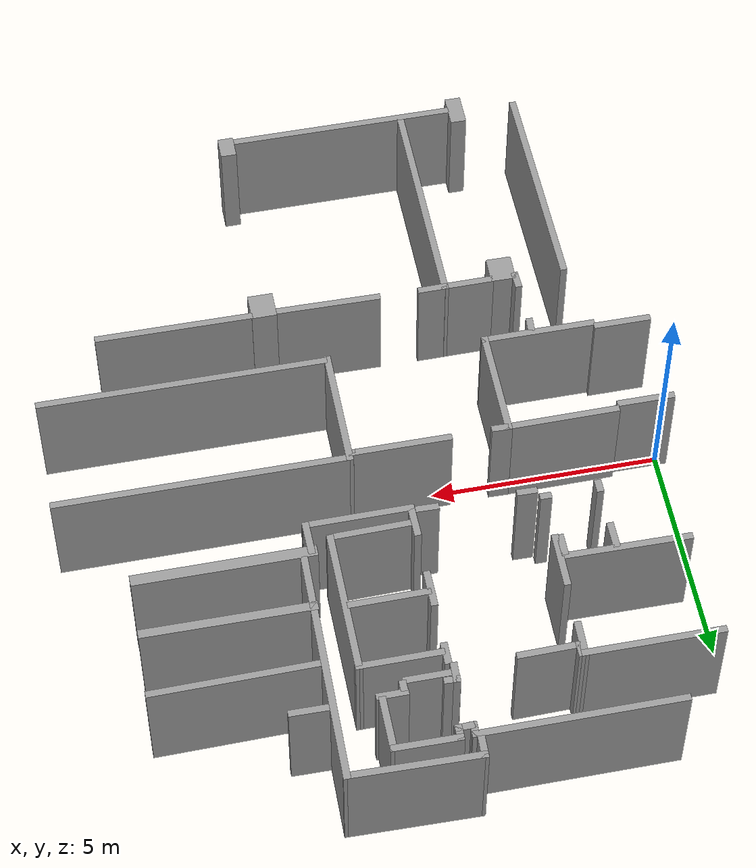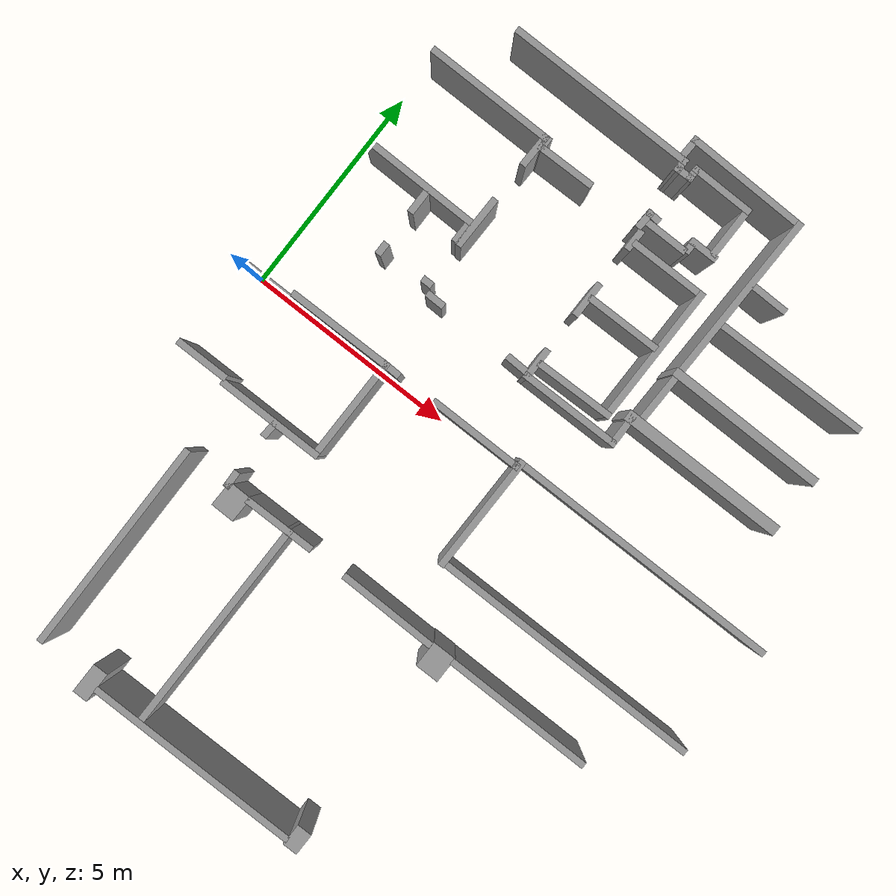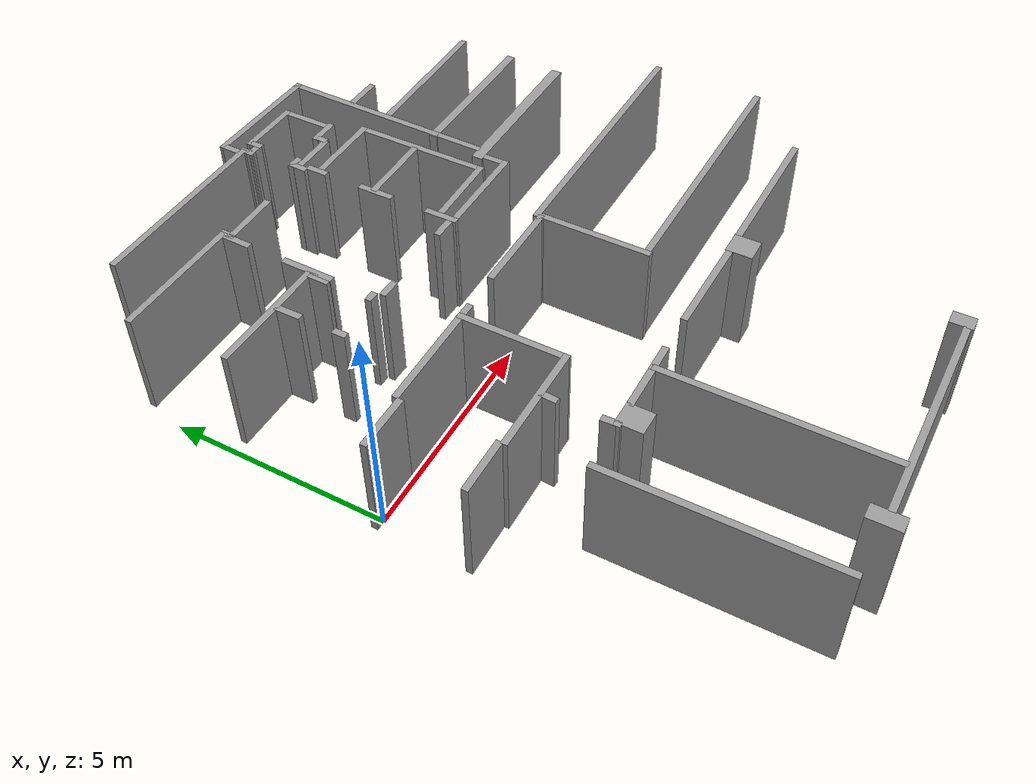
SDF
<sdf version="1.7">
 <model name="New_6_OG_normale_tueren">
  <pose>10.3487 -1.93317 0 0 -0 0</pose>
  <link name="Wall_152">
   <collision name="Wall_152_Collision">
    <geometry><box><size>0.438918 0.15 2.5</size></box></geometry>
    <pose>0 0 1.25 0 -0 0</pose>
   </collision>
   <visual name="Wall_152_Visual">
    <pose>0 0 1.25 0 -0 0</pose>
    <geometry><box><size>0.438918 0.15 2.5</size></box></geometry>
    <material>
     <script><uri>file://media/materials/scripts/gazebo.material</uri><name>Gazebo/Grey</name></script>
     <ambient>1 1 1 1</ambient>
    </material>
    <meta><layer>0</layer></meta>
   </visual>
   <pose>-6.9393 3.79409 0 0 -0 3.12331</pose>
  </link>
  <link name="Wall_164">
   <collision name="Wall_164_Collision">
    <geometry><box><size>3.00696 0.15 2.5</size></box></geometry>
    <pose>0 0 1.25 0 -0 0</pose>
   </collision>
   <visual name="Wall_164_Visual">
    <pose>0 0 1.25 0 -0 0</pose>
    <geometry><box><size>3.00696 0.15 2.5</size></box></geometry>
    <material>
     <script><uri>file://media/materials/scripts/gazebo.material</uri><name>Gazebo/Grey</name></script>
     <ambient>1 1 1 1</ambient>
    </material>
    <meta><layer>0</layer></meta>
   </visual>
   <pose>-8.64761 7.78528 0 0 -0 -0.002915</pose>
  </link>
  <link name="Wall_166">
   <collision name="Wall_166_Collision">
    <geometry><box><size>1.23115 0.15 2.5</size></box></geometry>
    <pose>0 0 1.25 0 -0 0</pose>
   </collision>
   <visual name="Wall_166_Visual">
    <pose>0 0 1.25 0 -0 0</pose>
    <geometry><box><size>1.23115 0.15 2.5</size></box></geometry>
    <material>
     <script><uri>file://media/materials/scripts/gazebo.material</uri><name>Gazebo/Grey</name></script>
     <ambient>1 1 1 1</ambient>
    </material>
    <meta><layer>0</layer></meta>
   </visual>
   <pose>-7.25141 5.55807 0 0 -0 1.56079</pose>
  </link>
  <link name="Wall_168">
   <collision name="Wall_168_Collision">
    <geometry><box><size>0.808489 0.15 2.5</size></box></geometry>
    <pose>0 0 1.25 0 -0 0</pose>
   </collision>
   <visual name="Wall_168_Visual">
    <pose>0 0 1.25 0 -0 0</pose>
    <geometry><box><size>0.808489 0.15 2.5</size></box></geometry>
    <material>
     <script><uri>file://media/materials/scripts/gazebo.material</uri><name>Gazebo/Grey</name></script>
     <ambient>1 1 1 1</ambient>
    </material>
    <meta><layer>0</layer></meta>
   </visual>
   <pose>-7.22578 7.45194 0 0 -0 1.5506</pose>
  </link>
  <link name="Wall_172">
   <collision name="Wall_172_Collision">
    <geometry><box><size>2.75013 0.15 2.5</size></box></geometry>
    <pose>0 0 1.25 0 -0 0</pose>
   </collision>
   <visual name="Wall_172_Visual">
    <pose>0 0 1.25 0 -0 0</pose>
    <geometry><box><size>2.75013 0.15 2.5</size></box></geometry>
    <material>
     <script><uri>file://media/materials/scripts/gazebo.material</uri><name>Gazebo/Grey</name></script>
     <ambient>1 1 1 1</ambient>
    </material>
    <meta><layer>0</layer></meta>
   </visual>
   <pose>-8.667 5.4928 0 0 -0 -0.01009</pose>
  </link>
  <link name="Wall_176">
   <collision name="Wall_176_Collision">
    <geometry><box><size>0.602751 0.15 2.5</size></box></geometry>
    <pose>0 0 1.25 0 -0 0</pose>
   </collision>
   <visual name="Wall_176_Visual">
    <pose>0 0 1.25 0 -0 0</pose>
    <geometry><box><size>0.602751 0.15 2.5</size></box></geometry>
    <material>
     <script><uri>file://media/materials/scripts/gazebo.material</uri><name>Gazebo/Grey</name></script>
     <ambient>1 1 1 1</ambient>
    </material>
    <meta><layer>0</layer></meta>
   </visual>
   <pose>-8.44182 5.17566 0 0 -0 -1.56317</pose>
  </link>
  <link name="Wall_178">
   <collision name="Wall_178_Collision">
    <geometry><box><size>0.303038 0.15 2.5</size></box></geometry>
    <pose>0 0 1.25 0 -0 0</pose>
   </collision>
   <visual name="Wall_178_Visual">
    <pose>0 0 1.25 0 -0 0</pose>
    <geometry><box><size>0.303038 0.15 2.5</size></box></geometry>
    <material>
     <script><uri>file://media/materials/scripts/gazebo.material</uri><name>Gazebo/Grey</name></script>
     <ambient>1 1 1 1</ambient>
    </material>
    <meta><layer>0</layer></meta>
   </visual>
   <pose>-8.43752 3.94317 0 0 -0 -1.5708</pose>
  </link>
  <link name="Wall_184">
   <collision name="Wall_184_Collision">
    <geometry><box><size>0.5 0.15 2.5</size></box></geometry>
    <pose>0 0 1.25 0 -0 0</pose>
   </collision>
   <visual name="Wall_184_Visual">
    <pose>0 0 1.25 0 -0 0</pose>
    <geometry><box><size>0.5 0.15 2.5</size></box></geometry>
    <material>
     <script><uri>file://media/materials/scripts/gazebo.material</uri><name>Gazebo/Grey</name></script>
     <ambient>1 1 1 1</ambient>
    </material>
    <meta><layer>0</layer></meta>
   </visual>
   <pose>-7.36175 5.2101 0 0 -0 -1.5708</pose>
  </link>
  <link name="Wall_188">
   <collision name="Wall_188_Collision">
    <geometry><box><size>0.25 0.15 2.5</size></box></geometry>
    <pose>0 0 1.25 0 -0 0</pose>
   </collision>
   <visual name="Wall_188_Visual">
    <pose>0 0 1.25 0 -0 0</pose>
    <geometry><box><size>0.25 0.15 2.5</size></box></geometry>
    <material>
     <script><uri>file://media/materials/scripts/gazebo.material</uri><name>Gazebo/Grey</name></script>
     <ambient>1 1 1 1</ambient>
    </material>
    <meta><layer>0</layer></meta>
   </visual>
   <pose>-7.29427 3.97715 0 0 -0 0</pose>
  </link>
  <link name="Wall_19">
   <collision name="Wall_19_Collision">
    <geometry><box><size>1.15349 0.15 2.5</size></box></geometry>
    <pose>0 0 1.25 0 -0 0</pose>
   </collision>
   <visual name="Wall_19_Visual">
    <pose>0 0 1.25 0 -0 0</pose>
    <geometry><box><size>1.15349 0.15 2.5</size></box></geometry>
    <material>
     <script><uri>file://media/materials/scripts/gazebo.material</uri><name>Gazebo/Grey</name></script>
     <ambient>1 1 1 1</ambient>
    </material>
    <meta><layer>0</layer></meta>
   </visual>
   <pose>-6.87291 -1.78985 0 0 -0 -3.13714</pose>
  </link>
  <link name="Wall_190">
   <collision name="Wall_190_Collision">
    <geometry><box><size>0.500143 0.15 2.5</size></box></geometry>
    <pose>0 0 1.25 0 -0 0</pose>
   </collision>
   <visual name="Wall_190_Visual">
    <pose>0 0 1.25 0 -0 0</pose>
    <geometry><box><size>0.500143 0.15 2.5</size></box></geometry>
    <material>
     <script><uri>file://media/materials/scripts/gazebo.material</uri><name>Gazebo/Grey</name></script>
     <ambient>1 1 1 1</ambient>
    </material>
    <meta><layer>0</layer></meta>
   </visual>
   <pose>-4.82652 3.79067 0 0 -0 -0.028564</pose>
  </link>
  <link name="Wall_192">
   <collision name="Wall_192_Collision">
    <geometry><box><size>0.773976 0.15 2.5</size></box></geometry>
    <pose>0 0 1.25 0 -0 0</pose>
   </collision>
   <visual name="Wall_192_Visual">
    <pose>0 0 1.25 0 -0 0</pose>
    <geometry><box><size>0.773976 0.15 2.5</size></box></geometry>
    <material>
     <script><uri>file://media/materials/scripts/gazebo.material</uri><name>Gazebo/Grey</name></script>
     <ambient>1 1 1 1</ambient>
    </material>
    <meta><layer>0</layer></meta>
   </visual>
   <pose>-4.50076 4.0341 0 0 -0 -1.5586</pose>
  </link>
  <link name="Wall_194">
   <collision name="Wall_194_Collision">
    <geometry><box><size>2.36359 0.15 2.5</size></box></geometry>
    <pose>0 0 1.25 0 -0 0</pose>
   </collision>
   <visual name="Wall_194_Visual">
    <pose>0 0 1.25 0 -0 0</pose>
    <geometry><box><size>2.36359 0.15 2.5</size></box></geometry>
    <material>
     <script><uri>file://media/materials/scripts/gazebo.material</uri><name>Gazebo/Grey</name></script>
     <ambient>1 1 1 1</ambient>
    </material>
    <meta><layer>0</layer></meta>
   </visual>
   <pose>-3.39021 3.72482 0 0 -0 -3.13933</pose>
  </link>
  <link name="Wall_196">
   <collision name="Wall_196_Collision">
    <geometry><box><size>0.834394 0.15 2.5</size></box></geometry>
    <pose>0 0 1.25 0 -0 0</pose>
   </collision>
   <visual name="Wall_196_Visual">
    <pose>0 0 1.25 0 -0 0</pose>
    <geometry><box><size>0.834394 0.15 2.5</size></box></geometry>
    <material>
     <script><uri>file://media/materials/scripts/gazebo.material</uri><name>Gazebo/Grey</name></script>
     <ambient>1 1 1 1</ambient>
    </material>
    <meta><layer>0</layer></meta>
   </visual>
   <pose>-4.49696 5.71467 0 0 -0 -1.5708</pose>
  </link>
  <link name="Wall_199">
   <collision name="Wall_199_Collision">
    <geometry><box><size>1.26849 0.15 2.5</size></box></geometry>
    <pose>0 0 1.25 0 -0 0</pose>
   </collision>
   <visual name="Wall_199_Visual">
    <pose>0 0 1.25 0 -0 0</pose>
    <geometry><box><size>1.26849 0.15 2.5</size></box></geometry>
    <material>
     <script><uri>file://media/materials/scripts/gazebo.material</uri><name>Gazebo/Grey</name></script>
     <ambient>1 1 1 1</ambient>
    </material>
    <meta><layer>0</layer></meta>
   </visual>
   <pose>-6.4931 7.58534 0 0 -0 -3.12799</pose>
  </link>
  <link name="Wall_205">
   <collision name="Wall_205_Collision">
    <geometry><box><size>4.43127 0.15 2.5</size></box></geometry>
    <pose>0 0 1.25 0 -0 0</pose>
   </collision>
   <visual name="Wall_205_Visual">
    <pose>0 0 1.25 0 -0 0</pose>
    <geometry><box><size>4.43127 0.15 2.5</size></box></geometry>
    <material>
     <script><uri>file://media/materials/scripts/gazebo.material</uri><name>Gazebo/Grey</name></script>
     <ambient>1 1 1 1</ambient>
    </material>
    <meta><layer>0</layer></meta>
   </visual>
   <pose>-6.8277 9.16325 0 0 -0 3.13982</pose>
  </link>
  <link name="Wall_207">
   <collision name="Wall_207_Collision">
    <geometry><box><size>0.355881 0.15 2.5</size></box></geometry>
    <pose>0 0 1.25 0 -0 0</pose>
   </collision>
   <visual name="Wall_207_Visual">
    <pose>0 0 1.25 0 -0 0</pose>
    <geometry><box><size>0.355881 0.15 2.5</size></box></geometry>
    <material>
     <script><uri>file://media/materials/scripts/gazebo.material</uri><name>Gazebo/Grey</name></script>
     <ambient>1 1 1 1</ambient>
    </material>
    <meta><layer>0</layer></meta>
   </visual>
   <pose>-4.68707 9.05679 0 0 -0 -1.5708</pose>
  </link>
  <link name="Wall_208">
   <collision name="Wall_208_Collision">
    <geometry><box><size>0.455029 0.15 2.5</size></box></geometry>
    <pose>0 0 1.25 0 -0 0</pose>
   </collision>
   <visual name="Wall_208_Visual">
    <pose>0 0 1.25 0 -0 0</pose>
    <geometry><box><size>0.455029 0.15 2.5</size></box></geometry>
    <material>
     <script><uri>file://media/materials/scripts/gazebo.material</uri><name>Gazebo/Grey</name></script>
     <ambient>1 1 1 1</ambient>
    </material>
    <meta><layer>0</layer></meta>
   </visual>
   <pose>-4.53498 8.95793 0 0 -0 0.024995</pose>
  </link>
  <link name="Wall_209">
   <collision name="Wall_209_Collision">
    <geometry><box><size>0.355318 0.15 2.5</size></box></geometry>
    <pose>0 0 1.25 0 -0 0</pose>
   </collision>
   <visual name="Wall_209_Visual">
    <pose>0 0 1.25 0 -0 0</pose>
    <geometry><box><size>0.355318 0.15 2.5</size></box></geometry>
    <material>
     <script><uri>file://media/materials/scripts/gazebo.material</uri><name>Gazebo/Grey</name></script>
     <ambient>1 1 1 1</ambient>
    </material>
    <meta><layer>0</layer></meta>
   </visual>
   <pose>-4.38289 9.06439 0 0 -0 1.5708</pose>
  </link>
  <link name="Wall_210">
   <collision name="Wall_210_Collision">
    <geometry><box><size>1.48085 0.15 2.5</size></box></geometry>
    <pose>0 0 1.25 0 -0 0</pose>
   </collision>
   <visual name="Wall_210_Visual">
    <pose>0 0 1.25 0 -0 0</pose>
    <geometry><box><size>1.48085 0.15 2.5</size></box></geometry>
    <material>
     <script><uri>file://media/materials/scripts/gazebo.material</uri><name>Gazebo/Grey</name></script>
     <ambient>1 1 1 1</ambient>
    </material>
    <meta><layer>0</layer></meta>
   </visual>
   <pose>-3.71751 9.16705 0 0 -0 -0.011428</pose>
  </link>
  <link name="Wall_212">
   <collision name="Wall_212_Collision">
    <geometry><box><size>1.25 0.15 2.5</size></box></geometry>
    <pose>0 0 1.25 0 -0 0</pose>
   </collision>
   <visual name="Wall_212_Visual">
    <pose>0 0 1.25 0 -0 0</pose>
    <geometry><box><size>1.25 0.15 2.5</size></box></geometry>
    <material>
     <script><uri>file://media/materials/scripts/gazebo.material</uri><name>Gazebo/Grey</name></script>
     <ambient>1 1 1 1</ambient>
    </material>
    <meta><layer>0</layer></meta>
   </visual>
   <pose>-3.04452 8.60945 0 0 -0 -1.5708</pose>
  </link>
  <link name="Wall_214">
   <collision name="Wall_214_Collision">
    <geometry><box><size>0.459849 0.15 2.5</size></box></geometry>
    <pose>0 0 1.25 0 -0 0</pose>
   </collision>
   <visual name="Wall_214_Visual">
    <pose>0 0 1.25 0 -0 0</pose>
    <geometry><box><size>0.459849 0.15 2.5</size></box></geometry>
    <material>
     <script><uri>file://media/materials/scripts/gazebo.material</uri><name>Gazebo/Grey</name></script>
     <ambient>1 1 1 1</ambient>
    </material>
    <meta><layer>0</layer></meta>
   </visual>
   <pose>-4.58191 7.72493 0 0 -0 -1.61149</pose>
  </link>
  <link name="Wall_216">
   <collision name="Wall_216_Collision">
    <geometry><box><size>0.340261 0.15 2.5</size></box></geometry>
    <pose>0 0 1.25 0 -0 0</pose>
   </collision>
   <visual name="Wall_216_Visual">
    <pose>0 0 1.25 0 -0 0</pose>
    <geometry><box><size>0.340261 0.15 2.5</size></box></geometry>
    <material>
     <script><uri>file://media/materials/scripts/gazebo.material</uri><name>Gazebo/Grey</name></script>
     <ambient>1 1 1 1</ambient>
    </material>
    <meta><layer>0</layer></meta>
   </visual>
   <pose>-4.48555 7.87593 0 0 -0 -0.039979</pose>
  </link>
  <link name="Wall_218">
   <collision name="Wall_218_Collision">
    <geometry><box><size>1 0.15 2.5</size></box></geometry>
    <pose>0 0 1.25 0 -0 0</pose>
   </collision>
   <visual name="Wall_218_Visual">
    <pose>0 0 1.25 0 -0 0</pose>
    <geometry><box><size>1 0.15 2.5</size></box></geometry>
    <material>
     <script><uri>file://media/materials/scripts/gazebo.material</uri><name>Gazebo/Grey</name></script>
     <ambient>1 1 1 1</ambient>
    </material>
    <meta><layer>0</layer></meta>
   </visual>
   <pose>-4.01704 7.71224 0 0 -0 3.14159</pose>
  </link>
  <link name="Wall_220">
   <collision name="Wall_220_Collision">
    <geometry><box><size>0.667097 0.15 2.5</size></box></geometry>
    <pose>0 0 1.25 0 -0 0</pose>
   </collision>
   <visual name="Wall_220_Visual">
    <pose>0 0 1.25 0 -0 0</pose>
    <geometry><box><size>0.667097 0.15 2.5</size></box></geometry>
    <material>
     <script><uri>file://media/materials/scripts/gazebo.material</uri><name>Gazebo/Grey</name></script>
     <ambient>1 1 1 1</ambient>
    </material>
    <meta><layer>0</layer></meta>
   </visual>
   <pose>-3.25744 7.97317 0 0 -0 0</pose>
  </link>
  <link name="Wall_223">
   <collision name="Wall_223_Collision">
    <geometry><box><size>0.25 0.15 2.5</size></box></geometry>
    <pose>0 0 1.25 0 -0 0</pose>
   </collision>
   <visual name="Wall_223_Visual">
    <pose>0 0 1.25 0 -0 0</pose>
    <geometry><box><size>0.25 0.15 2.5</size></box></geometry>
    <material>
     <script><uri>file://media/materials/scripts/gazebo.material</uri><name>Gazebo/Grey</name></script>
     <ambient>1 1 1 1</ambient>
    </material>
    <meta><layer>0</layer></meta>
   </visual>
   <pose>-3.50839 7.82545 0 0 -0 1.5708</pose>
  </link>
  <link name="Wall_226">
   <collision name="Wall_226_Collision">
    <geometry><box><size>0.501988 0.15 2.5</size></box></geometry>
    <pose>0 0 1.25 0 -0 0</pose>
   </collision>
   <visual name="Wall_226_Visual">
    <pose>0 0 1.25 0 -0 0</pose>
    <geometry><box><size>0.501988 0.15 2.5</size></box></geometry>
    <material>
     <script><uri>file://media/materials/scripts/gazebo.material</uri><name>Gazebo/Grey</name></script>
     <ambient>1 1 1 1</ambient>
    </material>
    <meta><layer>0</layer></meta>
   </visual>
   <pose>-4.4927 7.26329 0 0 -0 1.5708</pose>
  </link>
  <link name="Wall_228">
   <collision name="Wall_228_Collision">
    <geometry><box><size>0.784598 0.15 2.5</size></box></geometry>
    <pose>0 0 1.25 0 -0 0</pose>
   </collision>
   <visual name="Wall_228_Visual">
    <pose>0 0 1.25 0 -0 0</pose>
    <geometry><box><size>0.784598 0.15 2.5</size></box></geometry>
    <material>
     <script><uri>file://media/materials/scripts/gazebo.material</uri><name>Gazebo/Grey</name></script>
     <ambient>1 1 1 1</ambient>
    </material>
    <meta><layer>0</layer></meta>
   </visual>
   <pose>-2.28634 4.04961 0 0 -0 -1.56172</pose>
  </link>
  <link name="Wall_23">
   <collision name="Wall_23_Collision">
    <geometry><box><size>4.96531 0.15 2.5</size></box></geometry>
    <pose>0 0 1.25 0 -0 0</pose>
   </collision>
   <visual name="Wall_23_Visual">
    <pose>0 0 1.25 0 -0 0</pose>
    <geometry><box><size>4.96531 0.15 2.5</size></box></geometry>
    <material>
     <script><uri>file://media/materials/scripts/gazebo.material</uri><name>Gazebo/Grey</name></script>
     <ambient>1 1 1 1</ambient>
    </material>
    <meta><layer>0</layer></meta>
   </visual>
   <pose>-9.00712 -4.21302 0 0 -0 1.57869</pose>
  </link>
  <link name="Wall_230">
   <collision name="Wall_230_Collision">
    <geometry><box><size>3.875 0.25 2.5</size></box></geometry>
    <pose>0 0 1.25 0 -0 0</pose>
   </collision>
   <visual name="Wall_230_Visual">
    <pose>0 0 1.25 0 -0 0</pose>
    <geometry><box><size>3.875 0.25 2.5</size></box></geometry>
    <material>
     <script><uri>file://media/materials/scripts/gazebo.material</uri><name>Gazebo/Grey</name></script>
     <ambient>1 1 1 1</ambient>
    </material>
    <meta><layer>0</layer></meta>
   </visual>
   <pose>-0.476715 4.37189 0 0 -0 0</pose>
  </link>
  <link name="Wall_232">
   <collision name="Wall_232_Collision">
    <geometry><box><size>3.68006 0.2 2.5</size></box></geometry>
    <pose>0 0 1.25 0 -0 0</pose>
   </collision>
   <visual name="Wall_232_Visual">
    <pose>0 0 1.25 0 -0 0</pose>
    <geometry><box><size>3.68006 0.2 2.5</size></box></geometry>
    <material>
     <script><uri>file://media/materials/scripts/gazebo.material</uri><name>Gazebo/Grey</name></script>
     <ambient>1 1 1 1</ambient>
    </material>
    <meta><layer>0</layer></meta>
   </visual>
   <pose>-0.35374 5.65717 0 0 -0 -0.005747</pose>
  </link>
  <link name="Wall_245">
   <collision name="Wall_245_Collision">
    <geometry><box><size>4.06045 0.15 2.5</size></box></geometry>
    <pose>0 0 1.25 0 -0 0</pose>
   </collision>
   <visual name="Wall_245_Visual">
    <pose>0 0 1.25 0 -0 0</pose>
    <geometry><box><size>4.06045 0.15 2.5</size></box></geometry>
    <material>
     <script><uri>file://media/materials/scripts/gazebo.material</uri><name>Gazebo/Grey</name></script>
     <ambient>1 1 1 1</ambient>
    </material>
    <meta><layer>0</layer></meta>
   </visual>
   <pose>-2.06279 7.62215 0 0 -0 -1.58663</pose>
  </link>
  <link name="Wall_247">
   <collision name="Wall_247_Collision">
    <geometry><box><size>2.88611 0.15 2.5</size></box></geometry>
    <pose>0 0 1.25 0 -0 0</pose>
   </collision>
   <visual name="Wall_247_Visual">
    <pose>0 0 1.25 0 -0 0</pose>
    <geometry><box><size>2.88611 0.15 2.5</size></box></geometry>
    <material>
     <script><uri>file://media/materials/scripts/gazebo.material</uri><name>Gazebo/Grey</name></script>
     <ambient>1 1 1 1</ambient>
    </material>
    <meta><layer>0</layer></meta>
   </visual>
   <pose>-3.39956 9.6073 0 0 -0 -0.022055</pose>
  </link>
  <link name="Wall_249">
   <collision name="Wall_249_Collision">
    <geometry><box><size>0.492079 0.15 2.5</size></box></geometry>
    <pose>0 0 1.25 0 -0 0</pose>
   </collision>
   <visual name="Wall_249_Visual">
    <pose>0 0 1.25 0 -0 0</pose>
    <geometry><box><size>0.492079 0.15 2.5</size></box></geometry>
    <material>
     <script><uri>file://media/materials/scripts/gazebo.material</uri><name>Gazebo/Grey</name></script>
     <ambient>1 1 1 1</ambient>
    </material>
    <meta><layer>0</layer></meta>
   </visual>
   <pose>-4.77232 9.4665 0 0 -0 -1.6002</pose>
  </link>
  <link name="Wall_251">
   <collision name="Wall_251_Collision">
    <geometry><box><size>1.739 0.15 2.5</size></box></geometry>
    <pose>0 0 1.25 0 -0 0</pose>
   </collision>
   <visual name="Wall_251_Visual">
    <pose>0 0 1.25 0 -0 0</pose>
    <geometry><box><size>1.739 0.15 2.5</size></box></geometry>
    <material>
     <script><uri>file://media/materials/scripts/gazebo.material</uri><name>Gazebo/Grey</name></script>
     <ambient>1 1 1 1</ambient>
    </material>
    <meta><layer>0</layer></meta>
   </visual>
   <pose>-3.63087 5.78069 0 0 -0 0.006329</pose>
  </link>
  <link name="Wall_254">
   <collision name="Wall_254_Collision">
    <geometry><box><size>1.83981 0.15 2.5</size></box></geometry>
    <pose>0 0 1.25 0 -0 0</pose>
   </collision>
   <visual name="Wall_254_Visual">
    <pose>0 0 1.25 0 -0 0</pose>
    <geometry><box><size>1.83981 0.15 2.5</size></box></geometry>
    <material>
     <script><uri>file://media/materials/scripts/gazebo.material</uri><name>Gazebo/Grey</name></script>
     <ambient>1 1 1 1</ambient>
    </material>
    <meta><layer>0</layer></meta>
   </visual>
   <pose>-3.57053 4.10121 0 0 -0 0.017855</pose>
  </link>
  <link name="Wall_255">
   <collision name="Wall_255_Collision">
    <geometry><box><size>3.25 0.15 2.5</size></box></geometry>
    <pose>0 0 1.25 0 -0 0</pose>
   </collision>
   <visual name="Wall_255_Visual">
    <pose>0 0 1.25 0 -0 0</pose>
    <geometry><box><size>3.25 0.15 2.5</size></box></geometry>
    <material>
     <script><uri>file://media/materials/scripts/gazebo.material</uri><name>Gazebo/Grey</name></script>
     <ambient>1 1 1 1</ambient>
    </material>
    <meta><layer>0</layer></meta>
   </visual>
   <pose>-2.72576 5.66629 0 0 -0 1.5708</pose>
  </link>
  <link name="Wall_256">
   <collision name="Wall_256_Collision">
    <geometry><box><size>1.83048 0.15 2.5</size></box></geometry>
    <pose>0 0 1.25 0 -0 0</pose>
   </collision>
   <visual name="Wall_256_Visual">
    <pose>0 0 1.25 0 -0 0</pose>
    <geometry><box><size>1.83048 0.15 2.5</size></box></geometry>
    <material>
     <script><uri>file://media/materials/scripts/gazebo.material</uri><name>Gazebo/Grey</name></script>
     <ambient>1 1 1 1</ambient>
    </material>
    <meta><layer>0</layer></meta>
   </visual>
   <pose>-3.5655 7.21504 0 0 -0 -3.1401</pose>
  </link>
  <link name="Wall_258">
   <collision name="Wall_258_Collision">
    <geometry><box><size>1.26859 0.15 2.5</size></box></geometry>
    <pose>0 0 1.25 0 -0 0</pose>
   </collision>
   <visual name="Wall_258_Visual">
    <pose>0 0 1.25 0 -0 0</pose>
    <geometry><box><size>1.26859 0.15 2.5</size></box></geometry>
    <material>
     <script><uri>file://media/materials/scripts/gazebo.material</uri><name>Gazebo/Grey</name></script>
     <ambient>1 1 1 1</ambient>
    </material>
    <meta><layer>0</layer></meta>
   </visual>
   <pose>-2.10302 5.10795 0 0 -0 -1.58739</pose>
  </link>
  <link name="Wall_264">
   <collision name="Wall_264_Collision">
    <geometry><box><size>3.61982 0.15 2.5</size></box></geometry>
    <pose>0 0 1.25 0 -0 0</pose>
   </collision>
   <visual name="Wall_264_Visual">
    <pose>0 0 1.25 0 -0 0</pose>
    <geometry><box><size>3.61982 0.15 2.5</size></box></geometry>
    <material>
     <script><uri>file://media/materials/scripts/gazebo.material</uri><name>Gazebo/Grey</name></script>
     <ambient>1 1 1 1</ambient>
    </material>
    <meta><layer>0</layer></meta>
   </visual>
   <pose>-0.266876 7.02271 0 0 -0 0.011594</pose>
  </link>
  <link name="Wall_27">
   <collision name="Wall_27_Collision">
    <geometry><box><size>5 0.15 2.5</size></box></geometry>
    <pose>0 0 1.25 0 -0 0</pose>
   </collision>
   <visual name="Wall_27_Visual">
    <pose>0 0 1.25 0 -0 0</pose>
    <geometry><box><size>5 0.15 2.5</size></box></geometry>
    <material>
     <script><uri>file://media/materials/scripts/gazebo.material</uri><name>Gazebo/Grey</name></script>
     <ambient>1 1 1 1</ambient>
    </material>
    <meta><layer>0</layer></meta>
   </visual>
   <pose>-4.99607 -6.74448 0 0 -0 0</pose>
  </link>
  <link name="Wall_271">
   <collision name="Wall_271_Collision">
    <geometry><box><size>0.864103 0.15 2.5</size></box></geometry>
    <pose>0 0 1.25 0 -0 0</pose>
   </collision>
   <visual name="Wall_271_Visual">
    <pose>0 0 1.25 0 -0 0</pose>
    <geometry><box><size>0.864103 0.15 2.5</size></box></geometry>
    <material>
     <script><uri>file://media/materials/scripts/gazebo.material</uri><name>Gazebo/Grey</name></script>
     <ambient>1 1 1 1</ambient>
    </material>
    <meta><layer>0</layer></meta>
   </visual>
   <pose>-1.58161 8.01575 0 0 -0 3.12751</pose>
  </link>
  <link name="Wall_288">
   <collision name="Wall_288_Collision">
    <geometry><box><size>1.25 0.15 2.5</size></box></geometry>
    <pose>0 0 1.25 0 -0 0</pose>
   </collision>
   <visual name="Wall_288_Visual">
    <pose>0 0 1.25 0 -0 0</pose>
    <geometry><box><size>1.25 0.15 2.5</size></box></geometry>
    <material>
     <script><uri>file://media/materials/scripts/gazebo.material</uri><name>Gazebo/Grey</name></script>
     <ambient>1 1 1 1</ambient>
    </material>
    <meta><layer>0</layer></meta>
   </visual>
   <pose>-9.93743 -0.110096 0 0 -0 0</pose>
  </link>
  <link name="Wall_290">
   <collision name="Wall_290_Collision">
    <geometry><box><size>1.25 0.15 2.5</size></box></geometry>
    <pose>0 0 1.25 0 -0 0</pose>
   </collision>
   <visual name="Wall_290_Visual">
    <pose>0 0 1.25 0 -0 0</pose>
    <geometry><box><size>1.25 0.15 2.5</size></box></geometry>
    <material>
     <script><uri>file://media/materials/scripts/gazebo.material</uri><name>Gazebo/Grey</name></script>
     <ambient>1 1 1 1</ambient>
    </material>
    <meta><layer>0</layer></meta>
   </visual>
   <pose>-9.93743 1.9899 0 0 -0 0</pose>
  </link>
  <link name="Wall_292">
   <collision name="Wall_292_Collision">
    <geometry><box><size>2.48683 0.15 2.5</size></box></geometry>
    <pose>0 0 1.25 0 -0 0</pose>
   </collision>
   <visual name="Wall_292_Visual">
    <pose>0 0 1.25 0 -0 0</pose>
    <geometry><box><size>2.48683 0.15 2.5</size></box></geometry>
    <material>
     <script><uri>file://media/materials/scripts/gazebo.material</uri><name>Gazebo/Grey</name></script>
     <ambient>1 1 1 1</ambient>
    </material>
    <meta><layer>0</layer></meta>
   </visual>
   <pose>-8.08823 2.11217 0 0 -0 -3.13593</pose>
  </link>
  <link name="Wall_295">
   <collision name="Wall_295_Collision">
    <geometry><box><size>2.5 0.15 2.5</size></box></geometry>
    <pose>0 0 1.25 0 -0 0</pose>
   </collision>
   <visual name="Wall_295_Visual">
    <pose>0 0 1.25 0 -0 0</pose>
    <geometry><box><size>2.5 0.15 2.5</size></box></geometry>
    <material>
     <script><uri>file://media/materials/scripts/gazebo.material</uri><name>Gazebo/Grey</name></script>
     <ambient>1 1 1 1</ambient>
    </material>
    <meta><layer>0</layer></meta>
   </visual>
   <pose>-8.09762 -0.207504 0 0 -0 3.14159</pose>
  </link>
  <link name="Wall_297">
   <collision name="Wall_297_Collision">
    <geometry><box><size>2.47629 0.15 2.5</size></box></geometry>
    <pose>0 0 1.25 0 -0 0</pose>
   </collision>
   <visual name="Wall_297_Visual">
    <pose>0 0 1.25 0 -0 0</pose>
    <geometry><box><size>2.47629 0.15 2.5</size></box></geometry>
    <material>
     <script><uri>file://media/materials/scripts/gazebo.material</uri><name>Gazebo/Grey</name></script>
     <ambient>1 1 1 1</ambient>
    </material>
    <meta><layer>0</layer></meta>
   </visual>
   <pose>-6.92123 0.955639 0 0 -0 -1.57199</pose>
  </link>
  <link name="Wall_299">
   <collision name="Wall_299_Collision">
    <geometry><box><size>0.4407 0.15 2.5</size></box></geometry>
    <pose>0 0 1.25 0 -0 0</pose>
   </collision>
   <visual name="Wall_299_Visual">
    <pose>0 0 1.25 0 -0 0</pose>
    <geometry><box><size>0.4407 0.15 2.5</size></box></geometry>
    <material>
     <script><uri>file://media/materials/scripts/gazebo.material</uri><name>Gazebo/Grey</name></script>
     <ambient>1 1 1 1</ambient>
    </material>
    <meta><layer>0</layer></meta>
   </visual>
   <pose>-6.77455 2.11824 0 0 -0 3.11513</pose>
  </link>
  <link name="Wall_301">
   <collision name="Wall_301_Collision">
    <geometry><box><size>2.22433 0.15 2.5</size></box></geometry>
    <pose>0 0 1.25 0 -0 0</pose>
   </collision>
   <visual name="Wall_301_Visual">
    <pose>0 0 1.25 0 -0 0</pose>
    <geometry><box><size>2.22433 0.15 2.5</size></box></geometry>
    <material>
     <script><uri>file://media/materials/scripts/gazebo.material</uri><name>Gazebo/Grey</name></script>
     <ambient>1 1 1 1</ambient>
    </material>
    <meta><layer>0</layer></meta>
   </visual>
   <pose>-4.59029 2.1422 0 0 -0 -0.00188</pose>
  </link>
  <link name="Wall_302">
   <collision name="Wall_302_Collision">
    <geometry><box><size>0.15 0.15 2.5</size></box></geometry>
    <pose>0 0 1.25 0 -0 0</pose>
   </collision>
   <visual name="Wall_302_Visual">
    <pose>0 0 1.25 0 -0 0</pose>
    <geometry><box><size>0.15 0.15 2.5</size></box></geometry>
    <material>
     <script><uri>file://media/materials/scripts/gazebo.material</uri><name>Gazebo/Grey</name></script>
     <ambient>1 1 1 1</ambient>
    </material>
    <meta><layer>0</layer></meta>
   </visual>
   <pose>-3.55313 2.14025 0 0 -0 0</pose>
  </link>
  <link name="Wall_307">
   <collision name="Wall_307_Collision">
    <geometry><box><size>2.74052 0.15 2.5</size></box></geometry>
    <pose>0 0 1.25 0 -0 0</pose>
   </collision>
   <visual name="Wall_307_Visual">
    <pose>0 0 1.25 0 -0 0</pose>
    <geometry><box><size>2.74052 0.15 2.5</size></box></geometry>
    <material>
     <script><uri>file://media/materials/scripts/gazebo.material</uri><name>Gazebo/Grey</name></script>
     <ambient>1 1 1 1</ambient>
    </material>
    <meta><layer>0</layer></meta>
   </visual>
   <pose>-3.49477 0.949115 0 0 -0 1.56743</pose>
  </link>
  <link name="Wall_308">
   <collision name="Wall_308_Collision">
    <geometry><box><size>6.38515 0.15 2.5</size></box></geometry>
    <pose>0 0 1.25 0 -0 0</pose>
   </collision>
   <visual name="Wall_308_Visual">
    <pose>0 0 1.25 0 -0 0</pose>
    <geometry><box><size>6.38515 0.15 2.5</size></box></geometry>
    <material>
     <script><uri>file://media/materials/scripts/gazebo.material</uri><name>Gazebo/Grey</name></script>
     <ambient>1 1 1 1</ambient>
    </material>
    <meta><layer>0</layer></meta>
   </visual>
   <pose>-0.372844 2.2432 0 0 -0 -0.000366</pose>
  </link>
  <link name="Wall_314">
   <collision name="Wall_314_Collision">
    <geometry><box><size>6.27962 0.15 2.5</size></box></geometry>
    <pose>0 0 1.25 0 -0 0</pose>
   </collision>
   <visual name="Wall_314_Visual">
    <pose>0 0 1.25 0 -0 0</pose>
    <geometry><box><size>6.27962 0.15 2.5</size></box></geometry>
    <material>
     <script><uri>file://media/materials/scripts/gazebo.material</uri><name>Gazebo/Grey</name></script>
     <ambient>1 1 1 1</ambient>
    </material>
    <meta><layer>0</layer></meta>
   </visual>
   <pose>-0.344657 -0.328939 0 0 -0 3.13971</pose>
  </link>
  <link name="Wall_341">
   <collision name="Wall_341_Collision">
    <geometry><box><size>0.38638 0.15 2.5</size></box></geometry>
    <pose>0 0 1.25 0 -0 0</pose>
   </collision>
   <visual name="Wall_341_Visual">
    <pose>0 0 1.25 0 -0 0</pose>
    <geometry><box><size>0.38638 0.15 2.5</size></box></geometry>
    <material>
     <script><uri>file://media/materials/scripts/gazebo.material</uri><name>Gazebo/Grey</name></script>
     <ambient>1 1 1 1</ambient>
    </material>
    <meta><layer>0</layer></meta>
   </visual>
   <pose>-7.96817 -0.388215 0 0 -0 -1.64384</pose>
  </link>
  <link name="Wall_343">
   <collision name="Wall_343_Collision">
    <geometry><box><size>0.403261 0.15 2.5</size></box></geometry>
    <pose>0 0 1.25 0 -0 0</pose>
   </collision>
   <visual name="Wall_343_Visual">
    <pose>0 0 1.25 0 -0 0</pose>
    <geometry><box><size>0.403261 0.15 2.5</size></box></geometry>
    <material>
     <script><uri>file://media/materials/scripts/gazebo.material</uri><name>Gazebo/Grey</name></script>
     <ambient>1 1 1 1</ambient>
    </material>
    <meta><layer>0</layer></meta>
   </visual>
   <pose>-7.94804 -1.66184 0 0 -0 -1.52537</pose>
  </link>
  <link name="Wall_345">
   <collision name="Wall_345_Collision">
    <geometry><box><size>0.15 0.15 2.5</size></box></geometry>
    <pose>0 0 1.25 0 -0 0</pose>
   </collision>
   <visual name="Wall_345_Visual">
    <pose>0 0 1.25 0 -0 0</pose>
    <geometry><box><size>0.15 0.15 2.5</size></box></geometry>
    <material>
     <script><uri>file://media/materials/scripts/gazebo.material</uri><name>Gazebo/Grey</name></script>
     <ambient>1 1 1 1</ambient>
    </material>
    <meta><layer>0</layer></meta>
   </visual>
   <pose>-7.94229 -1.79409 0 0 -0 0</pose>
  </link>
  <link name="Wall_347">
   <collision name="Wall_347_Collision">
    <geometry><box><size>0.6 0.55 2.5</size></box></geometry>
    <pose>0 0 1.25 0 -0 0</pose>
   </collision>
   <visual name="Wall_347_Visual">
    <pose>0 0 1.25 0 -0 0</pose>
    <geometry><box><size>0.6 0.55 2.5</size></box></geometry>
    <material>
     <script><uri>file://media/materials/scripts/gazebo.material</uri><name>Gazebo/Grey</name></script>
     <ambient>1 1 1 1</ambient>
    </material>
    <meta><layer>0</layer></meta>
   </visual>
   <pose>-7.67482 -2.01708 0 0 -0 -1.58395</pose>
  </link>
  <link name="Wall_351">
   <collision name="Wall_351_Collision">
    <geometry><box><size>0.6 0.55 2.5</size></box></geometry>
    <pose>0 0 1.25 0 -0 0</pose>
   </collision>
   <visual name="Wall_351_Visual">
    <pose>0 0 1.25 0 -0 0</pose>
    <geometry><box><size>0.6 0.55 2.5</size></box></geometry>
    <material>
     <script><uri>file://media/materials/scripts/gazebo.material</uri><name>Gazebo/Grey</name></script>
     <ambient>1 1 1 1</ambient>
    </material>
    <meta><layer>0</layer></meta>
   </visual>
   <pose>-2.36824 -2.02258 0 0 -0 -1.5708</pose>
  </link>
  <link name="Wall_381">
   <collision name="Wall_381_Collision">
    <geometry><box><size>0.7 0.35 2.5</size></box></geometry>
    <pose>0 0 1.25 0 -0 0</pose>
   </collision>
   <visual name="Wall_381_Visual">
    <pose>0 0 1.25 0 -0 0</pose>
    <geometry><box><size>0.7 0.35 2.5</size></box></geometry>
    <material>
     <script><uri>file://media/materials/scripts/gazebo.material</uri><name>Gazebo/Grey</name></script>
     <ambient>1 1 1 1</ambient>
    </material>
    <meta><layer>0</layer></meta>
   </visual>
   <pose>-7.65551 -6.70957 0 0 -0 -1.5708</pose>
  </link>
  <link name="Wall_383">
   <collision name="Wall_383_Collision">
    <geometry><box><size>0.5 0.35 2.5</size></box></geometry>
    <pose>0 0 1.25 0 -0 0</pose>
   </collision>
   <visual name="Wall_383_Visual">
    <pose>0 0 1.25 0 -0 0</pose>
    <geometry><box><size>0.5 0.35 2.5</size></box></geometry>
    <material>
     <script><uri>file://media/materials/scripts/gazebo.material</uri><name>Gazebo/Grey</name></script>
     <ambient>1 1 1 1</ambient>
    </material>
    <meta><layer>0</layer></meta>
   </visual>
   <pose>-2.3552 -6.61956 0 0 -0 -1.5708</pose>
  </link>
  <link name="Wall_406">
   <collision name="Wall_406_Collision">
    <geometry><box><size>0.35119 0.15 2.5</size></box></geometry>
    <pose>0 0 1.25 0 -0 0</pose>
   </collision>
   <visual name="Wall_406_Visual">
    <pose>0 0 1.25 0 -0 0</pose>
    <geometry><box><size>0.35119 0.15 2.5</size></box></geometry>
    <material>
     <script><uri>file://media/materials/scripts/gazebo.material</uri><name>Gazebo/Grey</name></script>
     <ambient>1 1 1 1</ambient>
    </material>
    <meta><layer>0</layer></meta>
   </visual>
   <pose>-7.15432 7.67948 0 0 -0 -1.55506</pose>
  </link>
  <link name="Wall_65">
   <collision name="Wall_65_Collision">
    <geometry><box><size>5 0.15 2.5</size></box></geometry>
    <pose>0 0 1.25 0 -0 0</pose>
   </collision>
   <visual name="Wall_65_Visual">
    <pose>0 0 1.25 0 -0 0</pose>
    <geometry><box><size>5 0.15 2.5</size></box></geometry>
    <material>
     <script><uri>file://media/materials/scripts/gazebo.material</uri><name>Gazebo/Grey</name></script>
     <ambient>1 1 1 1</ambient>
    </material>
    <meta><layer>0</layer></meta>
   </visual>
   <pose>-6.37117 -4.21262 0 0 -0 -1.5708</pose>
  </link>
  <link name="Wall_67">
   <collision name="Wall_67_Collision">
    <geometry><box><size>0.668749 0.15 2.5</size></box></geometry>
    <pose>0 0 1.25 0 -0 0</pose>
   </collision>
   <visual name="Wall_67_Visual">
    <pose>0 0 1.25 0 -0 0</pose>
    <geometry><box><size>0.668749 0.15 2.5</size></box></geometry>
    <material>
     <script><uri>file://media/materials/scripts/gazebo.material</uri><name>Gazebo/Grey</name></script>
     <ambient>1 1 1 1</ambient>
    </material>
    <meta><layer>0</layer></meta>
   </visual>
   <pose>-6.11181 -1.78575 0 0 -0 0.007206</pose>
  </link>
  <link name="Wall_69">
   <collision name="Wall_69_Collision">
    <geometry><box><size>2.29251 0.15 2.5</size></box></geometry>
    <pose>0 0 1.25 0 -0 0</pose>
   </collision>
   <visual name="Wall_69_Visual">
    <pose>0 0 1.25 0 -0 0</pose>
    <geometry><box><size>2.29251 0.15 2.5</size></box></geometry>
    <material>
     <script><uri>file://media/materials/scripts/gazebo.material</uri><name>Gazebo/Grey</name></script>
     <ambient>1 1 1 1</ambient>
    </material>
    <meta><layer>0</layer></meta>
   </visual>
   <pose>-3.79171 -1.80454 0 0 -0 -0.013147</pose>
  </link>
  <link name="Wall_71">
   <collision name="Wall_71_Collision">
    <geometry><box><size>3.44536 0.15 2.5</size></box></geometry>
    <pose>0 0 1.25 0 -0 0</pose>
   </collision>
   <visual name="Wall_71_Visual">
    <pose>0 0 1.25 0 -0 0</pose>
    <geometry><box><size>3.44536 0.15 2.5</size></box></geometry>
    <material>
     <script><uri>file://media/materials/scripts/gazebo.material</uri><name>Gazebo/Grey</name></script>
     <ambient>1 1 1 1</ambient>
    </material>
    <meta><layer>0</layer></meta>
   </visual>
   <pose>-0.39564 -1.81276 0 0 -0 -0.004422</pose>
  </link>
  <static>1</static>
 </model>
</sdf>
